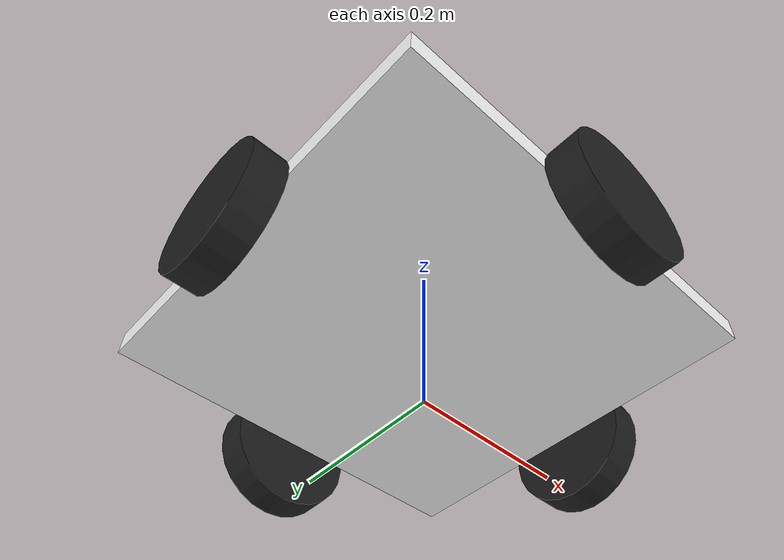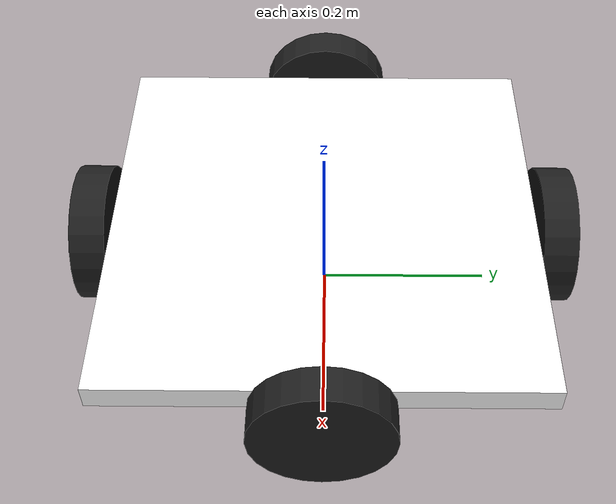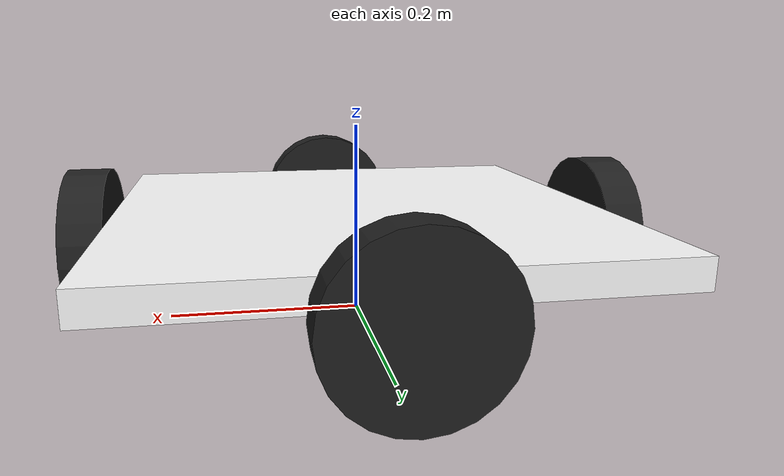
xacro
<?xml version="1.0"?>
<robot xmlns:xacro="http://www.ros.org/wiki/xacro">

    <xacro:include filename="inertial_macros.xacro"/>

    <material name="white">
        <color rgba="1 1 1 1"/>
    </material>

    <material name="orange">
		<color rgba="1 0.3 0.1 1"/>
    </material>

    <material name="blue">
		<color rgba="0.2 0.2 1 1"/>
    </material>

    <material name="black">
		<color rgba="0 0 0 1"/>
    </material>

    <!-- BASE FOOTPRINT -->
    <link name="base_footprint"/>

    <joint name="base_joint" type="fixed">
        <parent link="base_footprint"/>
        <child link="base_link"/>
        <origin xyz="0 0 0.08" rpy="0 0 0"/>  <!-- Height of wheel radius -->
    </joint>

    <!-- BASE LINK -->

    <link name="base_link">

    </link>

    <!-- CHASSIS LINK -->
	<joint name="chassis_joint" type="fixed">
		<parent link="base_link"/>
		<child link="chassis"/>
		<origin xyz="0 0 0"/>
	</joint>

	<link name="chassis">
		<visual>
			<origin xyz="0 0 0.02"/>
			<geometry>
				<box size="0.5 0.5 0.03"/>
			</geometry>
			<material name="white"/>
		</visual>

		<collision>
			<origin xyz="0 0 0.02"/>
			<geometry>
				<box size="0.5 0.5 0.03"/>
			</geometry>
		</collision>

		<xacro:inertial_box mass="0.2" x="0.5" y="0.5" z="0.03">
        	<origin xyz="0 0 0.1" rpy="0 0 0"/>
    	</xacro:inertial_box>
	</link>

	<gazebo reference="chassis">
        <material>Gazebo/White</material>
    </gazebo>

	<!-- WHEEL1 LINK -->
	<joint name="wheel1_joint" type="continuous">
		<parent link="base_link"/>
		<child link="wheel1_link"/>
		<origin xyz="0 0.27 0.0" rpy="-${pi/2} 0 0"/>
		<axis xyz="0 0 1"/>
	</joint>

	<link name="wheel1_link">
		<visual>
			<geometry>
				<cylinder radius="0.08" length="0.04"/>
			</geometry>
		</visual>

		<collision>
			<geometry>
				<cylinder radius="0.08" length="0.04"/>
			</geometry>
		</collision>

		<xacro:inertial_cylinder mass="0.1" length="0.4" radius="0.8">
        	<origin xyz="0 0 0" rpy="0 0 0"/>
    	</xacro:inertial_cylinder>
	</link>

	<gazebo reference="wheel1_link">
        <material>Gazebo/Black</material>
		<mu1 value="0.5"/>
		<mu2 value="0.5"/>
    </gazebo>

	<!-- WHEEL2 LINK -->
	<joint name="wheel2_joint" type="continuous">
		<parent link="base_link"/>
		<child link="wheel2_link"/>
		<origin xyz="0 -0.27 0.0" rpy="${pi/2} 0 0"/>
		<axis xyz="0 0 -1"/>
	</joint>

	<link name="wheel2_link">
		<visual>
			<geometry>
				<cylinder radius="0.08" length="0.04"/>
			</geometry>
		</visual>

		<collision>
			<geometry>
				<cylinder radius="0.08" length="0.04"/>
			</geometry>
		</collision>

		<xacro:inertial_cylinder mass="0.1" length="0.4" radius="0.8">
        	<origin xyz="0 0 0" rpy="0 0 0"/>
    	</xacro:inertial_cylinder>
	</link>

	<gazebo reference="wheel2_link">
        <material>Gazebo/Black</material>
		<mu1 value="0.5"/>
		<mu2 value="0.5"/>
    </gazebo>

	<!-- WHEEL3 LINK -->
	<joint name="wheel3_joint" type="continuous">
		<parent link="base_link"/>
		<child link="wheel3_link"/>
		<origin xyz="0.27 0 0.0" rpy="${-pi/2} 0 ${-pi/2}"/>
		<axis xyz="0 0 1"/>
	</joint>

	<link name="wheel3_link">
		<visual>
			<geometry>
				<cylinder radius="0.08" length="0.04"/>
			</geometry>
		</visual>

		<collision>
			<geometry>
				<cylinder radius="0.08" length="0.04"/>
			</geometry>
		</collision>

		<xacro:inertial_cylinder mass="0.1" length="0.4" radius="0.8">
        	<origin xyz="0 0 0" rpy="0 0 0"/>
    	</xacro:inertial_cylinder>
	</link>

	<gazebo reference="wheel3_link">
        <material>Gazebo/Black</material>
		<mu1 value="0.5"/>
		<mu2 value="0.5"/>
    </gazebo>

	<!-- WHEEL4 LINK -->
	<joint name="wheel4_joint" type="continuous">
		<parent link="base_link"/>
		<child link="wheel4_link"/>
		<origin xyz="-0.27 0 0.0" rpy="${pi/2} 0 ${-pi/2}"/>
		<axis xyz="0 0 -1"/>
	</joint>

	<link name="wheel4_link">
		<visual>
			<geometry>
				<cylinder radius="0.08" length="0.04"/>
			</geometry>
		</visual>

		<collision>
			<geometry>
				<cylinder radius="0.08" length="0.04"/>
			</geometry>
		</collision>

		<xacro:inertial_cylinder mass="0.1" length="0.4" radius="0.8">
        	<origin xyz="0 0 0" rpy="0 0 0"/>
    	</xacro:inertial_cylinder>
	</link>

	<gazebo reference="wheel4_link">
        <material>Gazebo/Black</material>
		<mu1 value="0.5"/>
		<mu2 value="0.5"/>
    </gazebo>
</robot>
